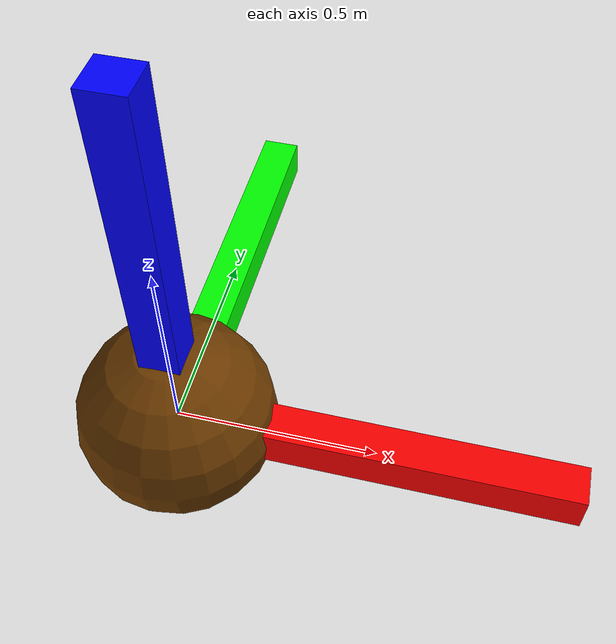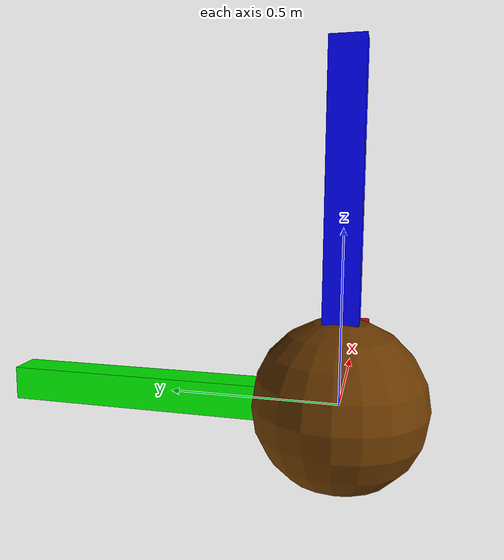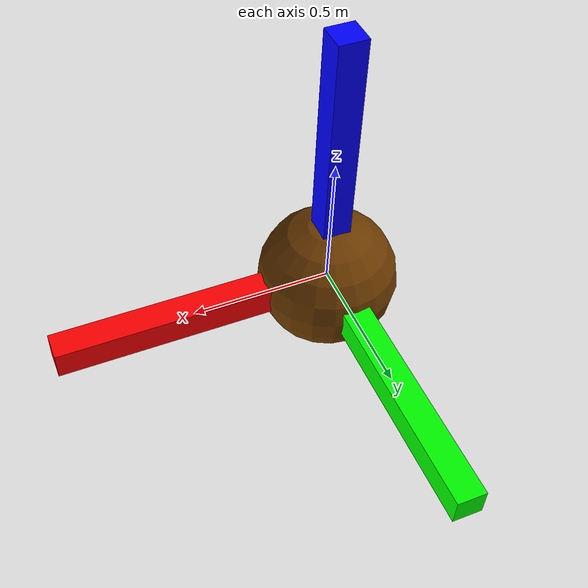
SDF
<?xml version="1.0" ?>

<sdf version="1.5">
	<model name="track_ball">
	  <pose>0 0 0.0 0 0 0</pose>
	  <static>false</static>

	  <link name="ball">
		<gravity>0</gravity>
		<pose>0 0 0 0 0 0</pose>
		<visual name="visual">
		  <geometry>
			<sphere>
			  <radius>0.25</radius>
			</sphere>
		  </geometry>
		  <material>
			<ambient>0.2 0.2 0.2 1.0</ambient>
			<diffuse>.421 0.225 0.0 1.0</diffuse>
		  </material>
		</visual>
	  </link>

	  <link name="x_axis">
		 <gravity>0</gravity>
		<pose>0.5 0 0 0 0 0</pose>
		<visual name="visual">
		  <geometry>
			<box>
			  <size>1 0.1 0.1</size>
			</box>
		  </geometry>
		  <material>
			<ambient>1.0 0.0 0.0 1.0</ambient>
			<diffuse>1.0 0.0 0.0 1.0</diffuse>
		  </material>
		</visual>
	  </link>

	  <link name="y_axis">
		<gravity>0</gravity>
		<pose>0 0.5 0 0 0 0</pose>
		<visual name="visual">
		  <geometry>
			<box>
			  <size>0.1 1 0.1</size>
			</box>
		  </geometry>
		  <material>
			<ambient>0.0 1.0 0.0 1.0</ambient>
			<diffuse>0.0 1.0 0.0 1.0</diffuse>
		  </material>
		</visual>
	  </link>

	  <link name="z_axis">
		<gravity>0</gravity>
		<pose>0 0 0.5 0 0 0</pose>
		<visual name="visual">
		  <geometry>
			<box>
			  <size>0.1 0.1 1</size>
			</box>
		  </geometry>
		  <material>
			<ambient>0.0 0.0 1.0 1.0</ambient>
			<diffuse>0.0 0.0 1.0 1.0</diffuse>
		  </material>
		</visual>
	  </link>

	  <joint name="x_joint" type="revolute">
		<parent>ball</parent>
		<child>x_axis</child>
		<pose>0.0 0.0 0.0 0.0 0.0 0.0</pose>
		<axis>
		  <limit>
			<lower>0</lower>
			<upper>0</upper>
		  </limit>
		  <xyz>1.0 0.0 0.0</xyz>
		</axis>
	  </joint>

	  <joint name="y_joint" type="revolute">
		<parent>ball</parent>
		<child>y_axis</child>
		<pose>0.0 0.0 0.0 0.0 0.0 0.0</pose>
		<axis>
		  <limit>
			<lower>0</lower>
			<upper>0</upper>
		  </limit>
		  <xyz>0.0 1.0 0.0</xyz>
		</axis>
	  </joint>

	  <joint name="z_joint" type="revolute">
		<parent>ball</parent>
		<child>z_axis</child>
		<pose>0.0 0.0 0.0 0.0 0.0 0.0</pose>
		<axis>
		  <limit>
			<lower>0</lower>
			<upper>0</upper>
		  </limit>
		  <xyz>0.0 0.0 1.0</xyz>
		</axis>
	  </joint>

	</model>
</sdf>
